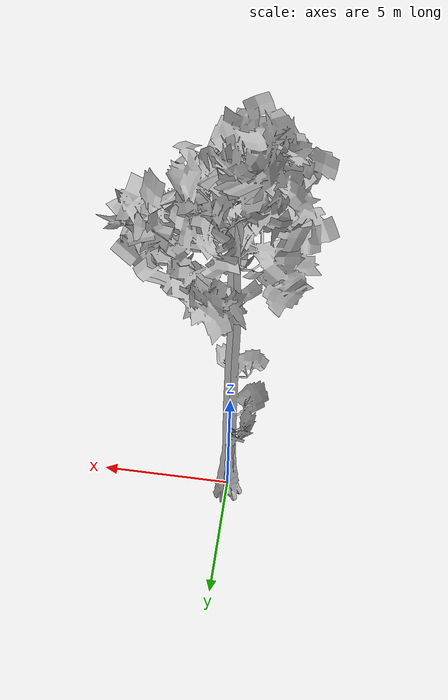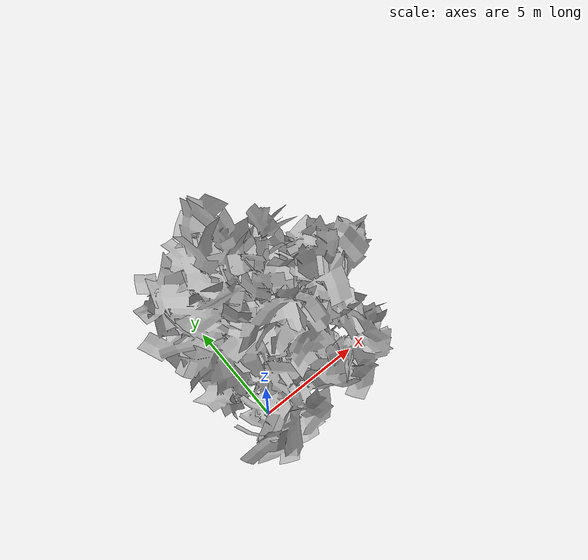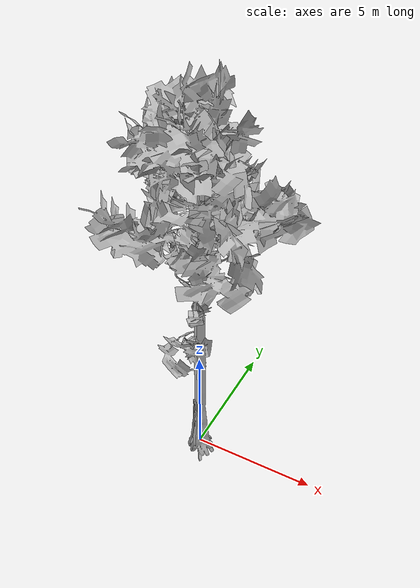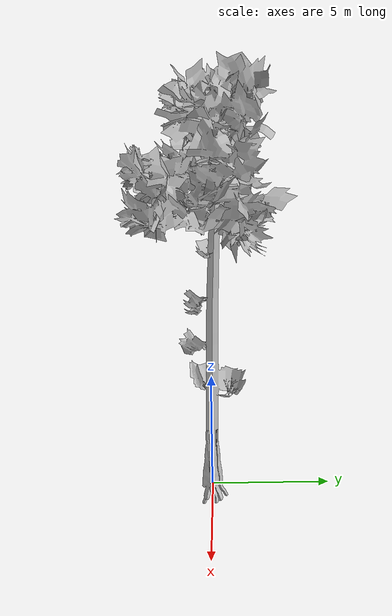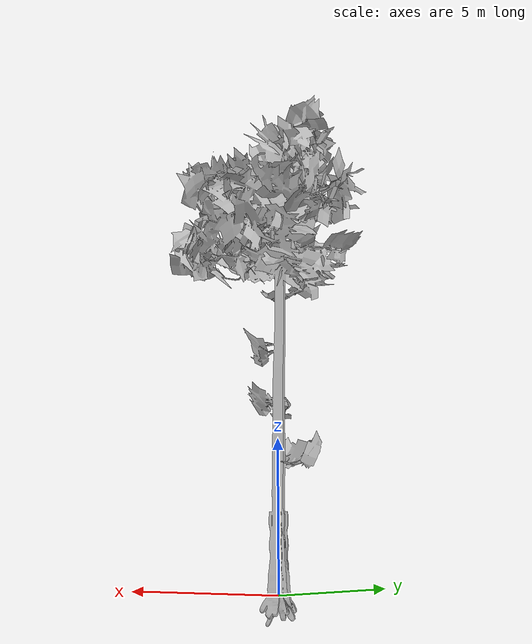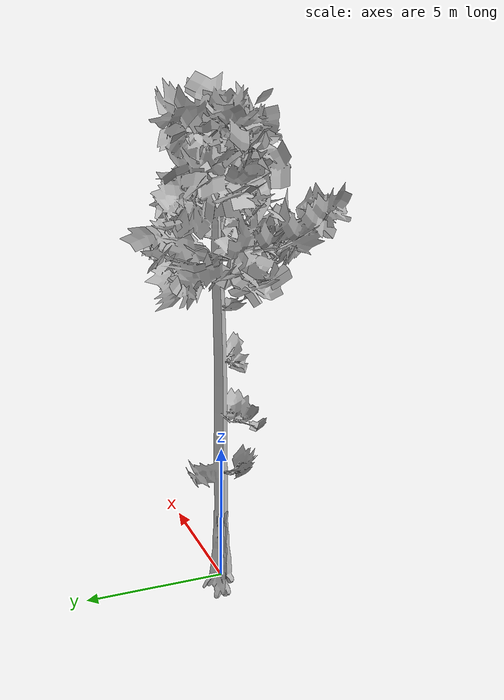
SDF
<?xml version="1.0" ?>
<sdf version="1.5">
  <model name="Tree 9">
     <static>true</static>
    <pose frame=''>0 0 0 1.57079 0 0</pose>
    <link name="link">
      <pose frame=''>0 0 0 0 0 0</pose>
      <collision name="collision">
        <geometry>
          <mesh>
            <scale>5 5 5</scale>
            <uri>model://tree_9/meshes/tree_9.obj</uri>
          </mesh>
        </geometry>
      </collision>
      <visual name="visual">
        <geometry>
          <mesh>

            <scale>5 5 5</scale>
            <uri>model://tree_9/meshes/tree_9.obj</uri>
          </mesh>
        </geometry>
      </visual>
    </link>
  </model>
</sdf>
